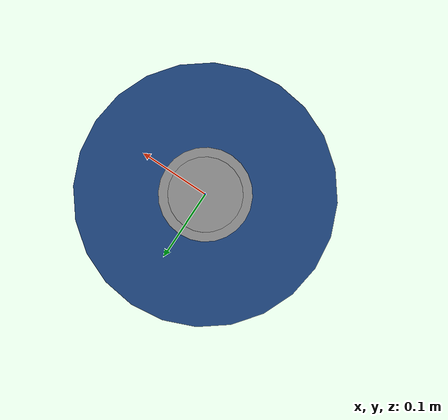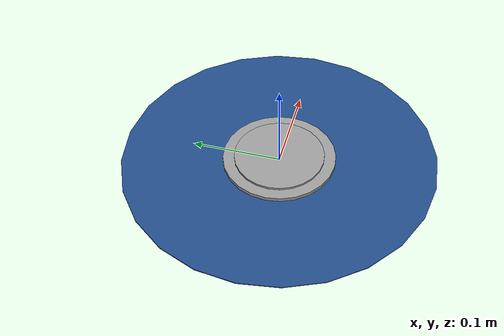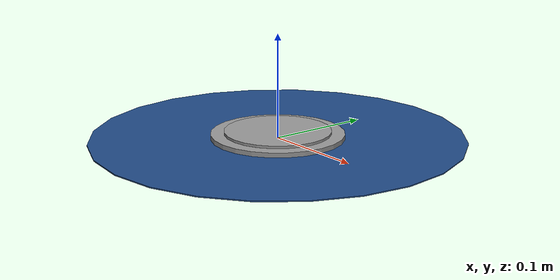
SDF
<?xml version='1.0'?>
<sdf version='1.7'>
  <model name='pond_real'>
    <link name='link_0'>
      <inertial>
        <mass>1</mass>
        <inertia>
          <ixx>0.145833</ixx>
          <ixy>0</ixy>
          <ixz>0</ixz>
          <iyy>0.145833</iyy>
          <iyz>0</iyz>
          <izz>0.125</izz>
        </inertia>
        <pose>0 0 0 0 -0 0</pose>
      </inertial>
      <pose>0 0 0 0 -0 0</pose>
      <gravity>1</gravity>
      <self_collide>0</self_collide>
      <kinematic>0</kinematic>
      <enable_wind>0</enable_wind>
      <visual name='visual'>
        <pose>0 0 0 0 -0 0</pose>
        <geometry>
          <cylinder>
            <radius>0.1778</radius>
            <length>0.001</length>
          </cylinder>
        </geometry>
        <material>
          <lighting>1</lighting>
          <script>
            <uri>file://media/materials/scripts/gazebo.material</uri>
            <name>Gazebo/Grey</name>
          </script>
          <shader type='pixel'>
            <normal_map>__default__</normal_map>
          </shader>
          <ambient>0.125 0.29 0.529 1</ambient>
          <diffuse>0.125 0.29 0.529 1</diffuse>
          <specular>0.01 0.01 0.01 1</specular>
          <emissive>0 0 0 1</emissive>
        </material>
        <transparency>0</transparency>
        <cast_shadows>1</cast_shadows>
      </visual>
    </link>
    <link name='link_2'>
      <inertial>
        <mass>1</mass>
        <inertia>
          <ixx>0.145833</ixx>
          <ixy>0</ixy>
          <ixz>0</ixz>
          <iyy>0.145833</iyy>
          <iyz>0</iyz>
          <izz>0.125</izz>
        </inertia>
        <pose>0 0 0 0 -0 0</pose>
      </inertial>
      <pose>0 0 0 0 -0 0</pose>
      <gravity>1</gravity>
      <self_collide>0</self_collide>
      <kinematic>0</kinematic>
      <enable_wind>0</enable_wind>
      <visual name='visual'>
        <pose>0 0 0 0 -0 0</pose>
        <geometry>
          <cylinder>
            <radius>0.0635</radius>
            <length>0.01</length>
          </cylinder>
        </geometry>
        <material>
          <lighting>1</lighting>
          <script>
            <uri>file://media/materials/scripts/gazebo.material</uri>
            <name>Gazebo/Grey</name>
          </script>
          <shader type='pixel'>
            <normal_map>__default__</normal_map>
          </shader>
          <ambient>0.933 0.933 0.925 1</ambient>
          <diffuse>0.933 0.933 0.925 1</diffuse>
          <specular>0.933 0.933 0.925 1</specular>
          <emissive>0.933 0.933 0.925 1</emissive>
        </material>
        <transparency>0</transparency>
        <cast_shadows>1</cast_shadows>
      </visual>
    </link>
    <link name='link_4'>
      <inertial>
        <mass>1</mass>
        <inertia>
          <ixx>0.145833</ixx>
          <ixy>0</ixy>
          <ixz>0</ixz>
          <iyy>0.145833</iyy>
          <iyz>0</iyz>
          <izz>0.125</izz>
        </inertia>
        <pose>0 0 0 0 -0 0</pose>
      </inertial>
      <pose>0 0 0 0 -0 0</pose>
      <gravity>1</gravity>
      <self_collide>0</self_collide>
      <kinematic>0</kinematic>
      <enable_wind>0</enable_wind>
      <visual name='visual'>
        <pose>0 0 0 0 -0 0</pose>
        <geometry>
          <cylinder>
            <radius>0.0508</radius>
            <length>0.015</length>
          </cylinder>
        </geometry>
        <material>
          <lighting>1</lighting>
          <script>
            <uri>file://media/materials/scripts/gazebo.material</uri>
            <name>Gazebo/Grey</name>
          </script>
          <shader type='pixel'>
            <normal_map>__default__</normal_map>
          </shader>
          <ambient>0.008 0.008 0.008 1</ambient>
          <diffuse>0.008 0.008 0.008 1</diffuse>
          <specular>0.01 0.01 0.01 1</specular>
          <emissive>0 0 0 1</emissive>
        </material>
        <transparency>0</transparency>
        <cast_shadows>1</cast_shadows>
      </visual>
    </link>
    <static>0</static>
    <allow_auto_disable>1</allow_auto_disable>
  </model>
</sdf>
